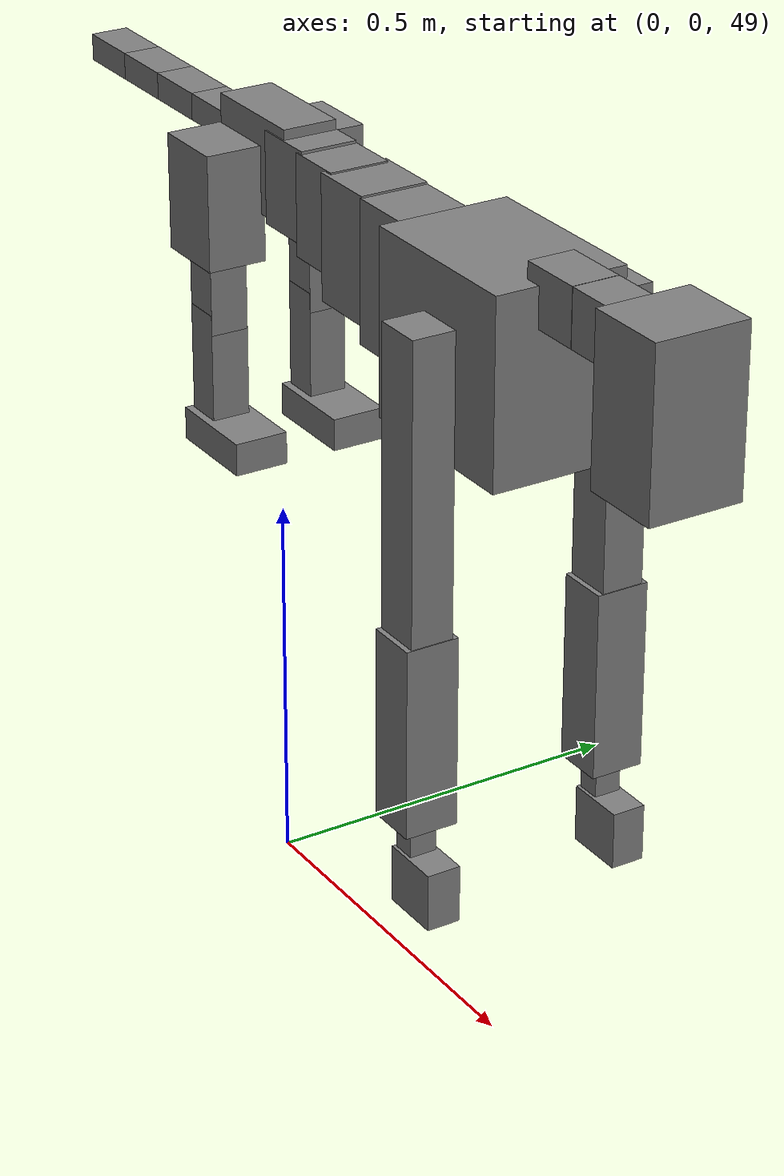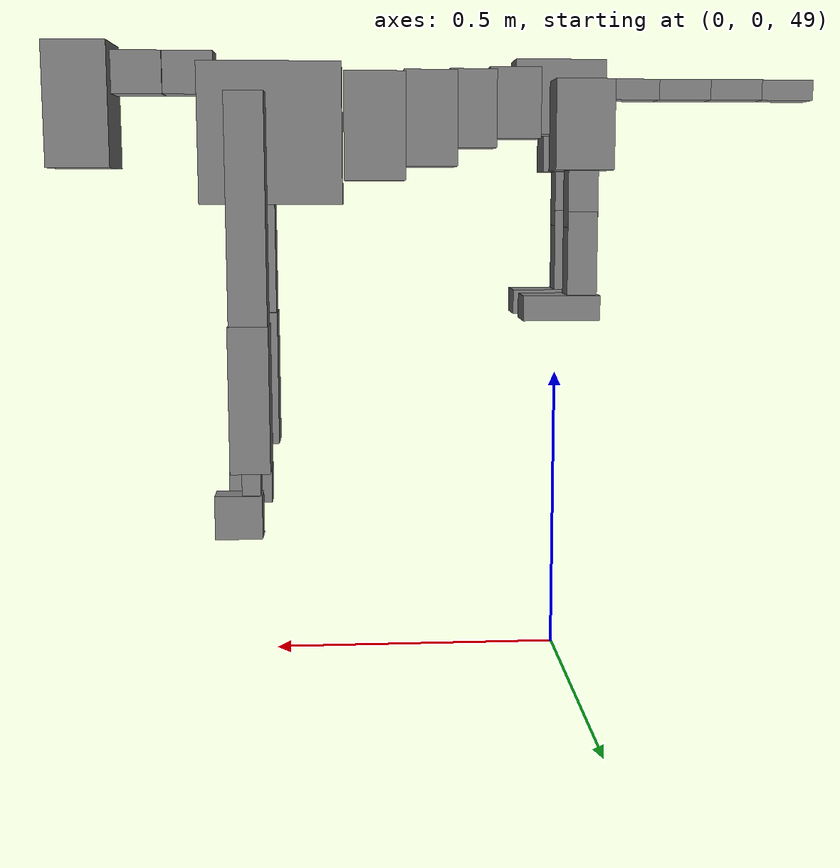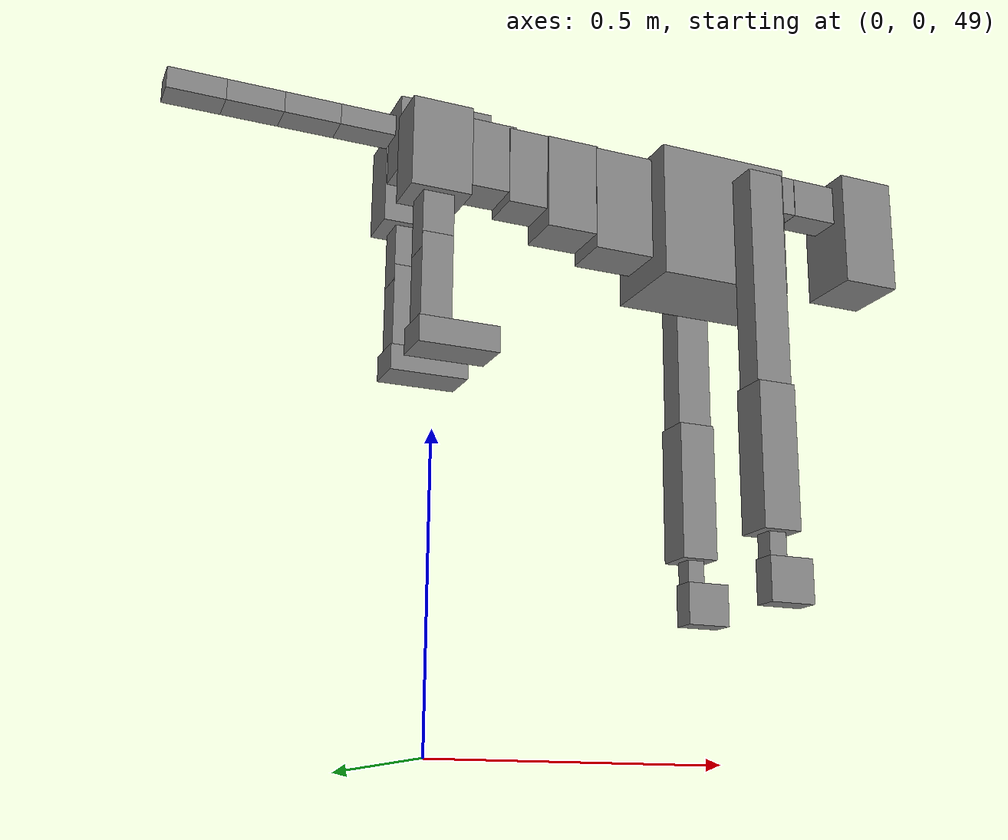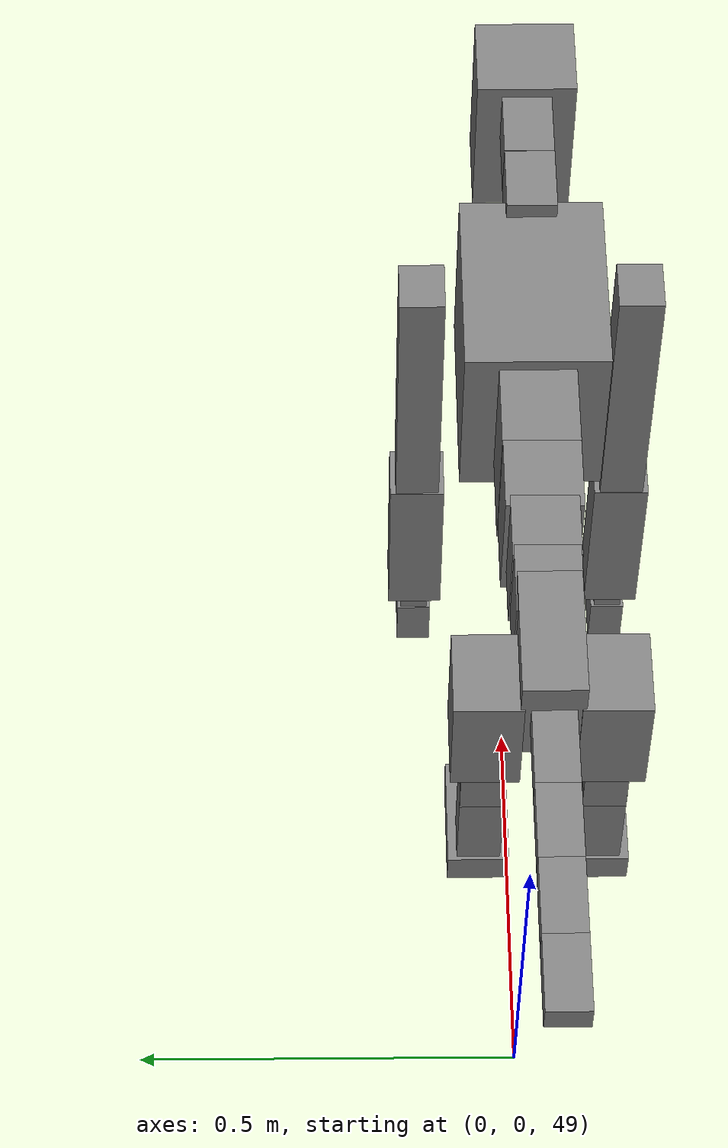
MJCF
<mujoco model="dog">

    <default>
        <joint armature="0.02" stiffness="1" damping="0.2" limited="true"/>
        <geom condim="3" friction="1 0.05 0.05" margin="0.01"/>
        <motor ctrllimited="true" ctrlrange="-1.0 1.0" forcelimited="true" gear="50"/>
    </default>

    <compiler inertiafromgeom="true" angle="radian"/>

    <option timestep="0.016" iterations="50" tolerance="1e-10" solver="Newton" jacobian="dense" cone="pyramidal"/>

    <size nconmax="20000" njmax="60000" nstack="5000000"/>
    <visual>
        <map force="0.1" zfar="30"/>
        <rgba haze="0.15 0.25 0.35 1"/>
        <quality shadowsize="2048"/>
        <global offwidth="800" offheight="800"/>
    </visual>

    <asset>
        <texture type="skybox" builtin="gradient" rgb1="0.3 0.5 0.7" rgb2="0 0 0" width="512" height="512"/>
        <texture name="texplane" type="2d" builtin="checker" rgb1=".2 .3 .4" rgb2=".1 0.15 0.2" width="512" height="512"
                 mark="cross" markrgb=".8 .8 .8"/>
        <texture name="texgeom" type="cube" builtin="flat" mark="cross" width="127" height="1278" rgb1="0.8 0.6 0.4"
                 rgb2="0.8 0.6 0.4" markrgb="1 1 1" random="0.01"/>

        <material name="matplane" reflectance="0.3" texture="texplane" texrepeat="1 1" texuniform="true"/>
        <material name="matgeom" texture="texgeom" texuniform="true" rgba="0.8 0.6 .4 1"/>
    </asset>

    <worldbody>
        <geom name="floor" pos="0 0 0" size="0 0 .25" type="plane" material="matplane" condim="3"/>

        <light directional="false" diffuse=".2 .2 .2" specular="0 0 0" pos="0 0 5" dir="0 0 -1" castshadow="false"/>
        <light mode="targetbodycom" target="torso" directional="false" diffuse=".8 .8 .8" specular="0.3 0.3 0.3"
               pos="0 0 4.0" dir="0 0 -1"/>

        <body name="root" pos="0 0 50">
            <freejoint name="root_1"/>
            <geom type="box" pos="0 0 -0.02" size="0.0774  0.0358  0.063" density="2030"/>

            <body name="spine1" pos="0.054 0 0">
                <joint name="spine1_y" axis="0 1 0" range="0 0.7" limited="true"/>
                <geom type="box" pos="0.02375 0 -0.03" size="0.04375  0.0375  0.05985" density="2030"/>

                <body name="spine2" pos="0.0612 0 0">
                    <joint name="spine2_y" axis="0 1 0" range="-0.15 0.15" limited="true"/>
                    <geom type="box" pos="0.03555  0  -0.04" size="0.04055  0.039  0.06615" density="2030"/>

                    <body name="spine3" pos="0.0730 0 0">
                        <joint name="spine3_y" axis="0 1 0" range="-0.15 0.15" limited="true"/>
                        <geom type="box" pos="0.03555  0  -0.057" size="0.04555  0.0445  0.081" density="2030"/>

                        <body name="spine4" pos="0.0780 0 0">
                            <joint name="spine4_y" axis="0 1 0" range="-0.15 0.15" limited="true"/>
                            <geom type="box" pos="0.05265  0  -0.07" size="0.05265  0.045  0.09135" density="2030"/>

                            <body name="torso" pos="0.1082 0 0">
                                <joint name="torso_y" axis="0 1 0" range="-0.15 0.15" limited="true"/>
                                <geom type="box" pos="0.11925  0  -0.085" size="0.11925  0.085  0.11745"
                                      density="2030"/>

                                <body name="neck1" pos="0.2160  0   0.0180">
                                    <joint name="neck1_y" axis="0 1 0" range="-1.2  -1" limited="true"/>
                                    <geom type="box" pos="0.0423  0  0" size="0.0423  0.03  0.036" density="2325"/>

                                    <body name="neck2" pos="0.0853  0  0">
                                        <joint name="neck2_y" axis="0 1 0" range="0.1  0" limited="true"/>
                                        <geom type="box" pos="0.0423  0  0" size="0.0423  0.03  0.036" density="2325"/>

                                        <body name="head" pos="0.0853  0  0">
                                            <joint name="head_y" axis="0 1 0" range="-0.3  -0.2" limited="true"/>
                                            <geom type="box" pos="0.0531  0  -0.055" size="0.0531  0.06  0.1044"
                                                  density="4030"/>

                                        </body>
                                    </body>
                                </body>

                                <body name="front_shoulder" pos="0.156  0   -0.0480">
                                    <joint name="front_shoulder_y" axis="0 1 0" range="-1 1.5" limited="true"/>
                                    <geom type="box" pos="0 0.13 -0.1756" size="0.0319  0.0273  0.2022" density="1158"/>
                                    <geom type="box" pos="0 -0.13 -0.1756" size="0.0319  0.0273  0.2022"
                                          density="1158"/>

                                    <body name="front_elbow" pos="0  0  -0.3511">
                                        <joint name="front_elbow_y" axis="0 1 0" range="-2 0" limited="true"/>
                                        <geom type="box" pos="0 0.13 -0.1222" size="0.0334  0.0342  0.1222"
                                              density="1081"/>
                                        <geom type="box" pos="0 -0.13 -0.1222" size="0.0334  0.0342  0.1222"
                                              density="1081"/>

                                        <body name="front_wrist" pos="0  0  -0.2444">
                                            <joint name="front_wrist_y" axis="0 1 0" range="-0.2 0" limited="true"/>
                                            <geom type="box" pos="0 0.13 -0.0273" size="0.0156  0.0173  0.0405"
                                                  density="1664"/>
                                            <geom type="box" pos="0 -0.13 -0.0273" size="0.0156  0.0173  0.0405"
                                                  density="1664"/>

                                            <body name="front_finger_end" pos="0  0  -0.0546">
                                                <joint name="front_finger_y" axis="0 1 0" range="-0.4 1"
                                                       limited="true"/>
                                                <geom type="box" pos="0.0216  0.13  -0.0219"
                                                      size="0.0395  0.0216  0.0369" density="1515"/>
                                                <geom type="box" pos="0.0216  -0.13  -0.0219"
                                                      size="0.0395  0.0216  0.0369" density="1515"/>

                                            </body>

                                        </body>
                                    </body>
                                </body>

                            </body>
                        </body>
                    </body>
                </body>
            </body>

            <body name="back_hip" pos="-0.03 0 -0.018">
                <joint name="back_hip_y" axis="0 1 0" range="-1.5 0.3" limited="true"/>
                <geom type="box" pos="0 0.07 -0.0521" size="0.0494  0.0388  0.0749" density="1154"/>
                <geom type="box" pos="0 -0.07 -0.0521" size="0.0494  0.0388  0.0749" density="1154"/>

                <body name="back_knee" pos="0  0  -0.1042">
                    <joint name="back_knee_y" axis="0 1 0" range="0 2.8" limited="true"/>
                    <geom type="box" pos="0 0.07 -0.0513" size="0.0254  0.0250  0.0669" density="1227"/>
                    <geom type="box" pos="0 -0.07 -0.0513" size="0.0254  0.0250  0.0669" density="1227"/>

                    <body name="back_ankle" pos="0  0  -0.1027">
                        <joint name="back_ankle_y" axis="0 1 0" range="-2.2 0" limited="true"/>
                        <geom type="box" pos="0 0.07 -0.0725" size="0.0252  0.0252  0.0837" density="1284"/>
                        <geom type="box" pos="0 -0.07 -0.0725" size="0.0252  0.0252  0.0837" density="1284"/>

                        <body name="back_toe_end" pos="0  0  -0.1450">
                            <joint name="back_toe_y" axis="0 1 0" range="-0.4 1" limited="true"/>
                            <geom type="box" pos="0.0356  0.07  -0.0063" size="0.0653  0.0356  0.0213" density="1515"/>
                            <geom type="box" pos="0.0356  -0.07  -0.0063" size="0.0653  0.0356  0.0213" density="1515"/>

                        </body>
                    </body>
                </body>
            </body>

            <body name="tail1" pos="-0.074 0 -0.006">
                <joint name="tail1_y" axis="0 1 0" range="-0.2 0.2" limited="true"/>
                <geom type="box" pos="-0.0536  0  0" size="0.045  0.025  0.0175" density="1587"/>

                <body name="tail2" pos="-0.09 0 0">
                    <joint name="tail2_y" axis="0 1 0" range="-0.2 0.2" limited="true"/>
                    <geom type="box" pos="-0.0536  0  0" size="0.045  0.025  0.0175" density="1587"/>

                    <body name="tail3" pos="-0.09 0 0">
                        <joint name="tail3_y" axis="0 1 0" range="-0.2 0.2" limited="true"/>
                        <geom type="box" pos="-0.0536  0  0" size="0.045  0.025  0.0175" density="1587"/>

                        <body name="tail4" pos="-0.09 0 0">
                            <joint name="tail4_y" axis="0 1 0" range="-0.2 0.2" limited="true"/>
                            <geom type="box" pos="-0.0536  0  0" size="0.045  0.025  0.0175" density="1587"/>

                        </body>
                    </body>
                </body>
            </body>
        </body>
    </worldbody>

    <actuator>
        <motor joint="spine1_y" forcerange="-150 150     "/>
        <motor joint="spine2_y" forcerange="-150 150     "/>
        <motor joint="spine3_y" forcerange="-150 150     "/>
        <motor joint="spine4_y" forcerange="-150 150     "/>
        <motor joint="torso_y" forcerange="-150 150     "/>
        <motor joint="neck1_y" forcerange="-100 100       "/>
        <motor joint="neck2_y" forcerange="-100 100       "/>
        <motor joint="head_y" forcerange="-150 150       "/>
        <motor joint="front_shoulder_y" forcerange="-115.70 166.12"/>
        <motor joint="front_elbow_y" forcerange="-165.74 182.93"/>
        <motor joint="front_wrist_y" forcerange="-82.29 56.06"/>
        <motor joint="front_finger_y" forcerange="-33.95 41.00"/>
        <motor joint="back_hip_y" forcerange="-318.75 398.05"/>
        <motor joint="back_knee_y" forcerange="-259.85 304.44"/>
        <motor joint="back_angle_y" forcerange="-169.77 133.56"/>
        <motor joint="back_toe_y" forcerange="-77.73 127.40"/>
        <motor joint="tail1_y" forcerange="-50 50     "/>
        <motor joint="tail2_y" forcerange="-50 50     "/>
        <motor joint="tail3_y" forcerange="-50 50     "/>
        <motor joint="tail4_y" forcerange="-50 50     "/>
    </actuator>
</mujoco>
